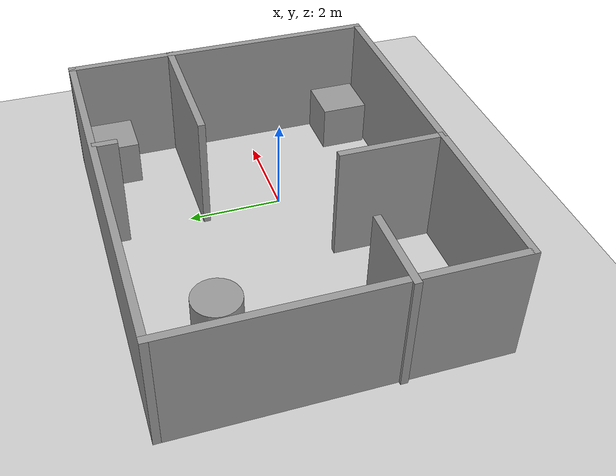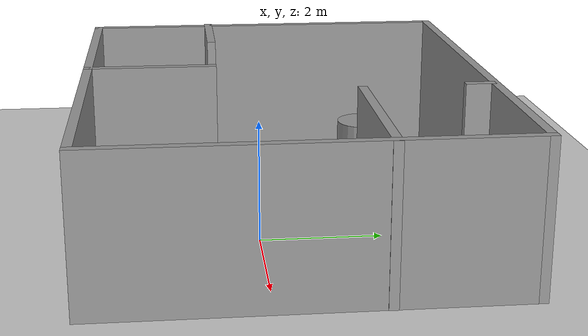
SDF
<sdf version="1.7">
 <world name="default">
  <light name="sun" type="directional">
   <pose>0 0 10 0 -0 0</pose>
   <diffuse>0.8 0.8 0.8 1</diffuse>
   <specular>0.2 0.2 0.2 1</specular>
   <attenuation>
    <range>1000</range>
    <constant>0.9</constant>
    <linear>0.01</linear>
    <quadratic>0.001</quadratic>
   </attenuation>
   <direction>-0.5 0.1 -0.9</direction>
   <spot><inner_angle>0</inner_angle><outer_angle>0</outer_angle><falloff>0</falloff></spot>
  </light>
  <model name="ground_plane">
   <static>1</static>
   <link name="link">
    <collision name="collision">
     <geometry><plane><normal>0 0 1</normal><size>100 100</size></plane></geometry>
     <surface>
      <contact><collide_bitmask>65535</collide_bitmask></contact>
      <friction><ode><mu>100</mu><mu2>50</mu2></ode></friction>
     </surface>
    </collision>
    <visual name="visual">
     <cast_shadows>0</cast_shadows>
     <geometry><plane><normal>0 0 1</normal><size>100 100</size></plane></geometry>
     <material>
      <script><uri>file://media/materials/scripts/gazebo.material</uri><name>Gazebo/Grey</name></script>
     </material>
    </visual>
   </link>
  </model>
  <gravity>0 0 -9.8</gravity>
  <magnetic_field>6e-06 2.3e-05 -4.2e-05</magnetic_field>
  <atmosphere type="adiabatic"/>
  <physics type="ode">
   <max_step_size>0.001</max_step_size>
   <real_time_factor>1</real_time_factor>
   <real_time_update_rate>1000</real_time_update_rate>
  </physics>
  <scene><ambient>0.4 0.4 0.4 1</ambient><background>0.7 0.7 0.7 1</background><shadows>1</shadows></scene>
  <audio><device>default</device></audio>
  <spherical_coordinates>
   <surface_model>EARTH_WGS84</surface_model>
   <latitude_deg>0</latitude_deg>
   <longitude_deg>0</longitude_deg>
   <elevation>0</elevation>
   <heading_deg>0</heading_deg>
  </spherical_coordinates>
  <model name="custom">
   <pose>-1.33588 0.54 0 0 -0 0</pose>
   <link name="Wall_1">
    <collision name="Wall_1_Collision">
     <geometry><box><size>4.75 0.15 2.5</size></box></geometry>
     <pose>0 0 1.25 0 -0 0</pose>
    </collision>
    <visual name="Wall_1_Visual">
     <pose>0 0 1.25 0 -0 0</pose>
     <geometry><box><size>4.75 0.15 2.5</size></box></geometry>
     <material>
      <script><uri>file://media/materials/scripts/gazebo.material</uri><name>Gazebo/Grey</name></script>
      <ambient>1 1 1 1</ambient>
     </material>
     <meta><layer>0</layer></meta>
    </visual>
    <pose>1.77588 -3.3 0 0 -0 0</pose>
   </link>
   <link name="Wall_10">
    <collision name="Wall_10_Collision">
     <geometry><box><size>0.5 0.15 2.5</size></box></geometry>
     <pose>0 0 1.25 0 -0 0</pose>
    </collision>
    <visual name="Wall_10_Visual">
     <pose>0 0 1.25 0 -0 0</pose>
     <geometry><box><size>0.5 0.15 2.5</size></box></geometry>
     <material>
      <script><uri>file://media/materials/scripts/gazebo.material</uri><name>Gazebo/Grey</name></script>
      <ambient>1 1 1 1</ambient>
     </material>
     <meta><layer>0</layer></meta>
    </visual>
    <pose>1.13276 3.05876 0 0 -0 -1.5708</pose>
   </link>
   <link name="Wall_13">
    <collision name="Wall_13_Collision">
     <geometry><box><size>3 0.15 2.5</size></box></geometry>
     <pose>0 0 1.25 0 -0 0</pose>
    </collision>
    <visual name="Wall_13_Visual">
     <pose>0 0 1.25 0 -0 0</pose>
     <geometry><box><size>3 0.15 2.5</size></box></geometry>
     <material>
      <script><uri>file://media/materials/scripts/gazebo.material</uri><name>Gazebo/Grey</name></script>
      <ambient>1 1 1 1</ambient>
     </material>
     <meta><layer>0</layer></meta>
    </visual>
    <pose>2.66101 1.13007 0 0 -0 3.14159</pose>
   </link>
   <link name="Wall_2">
    <collision name="Wall_2_Collision">
     <geometry><box><size>6.75 0.15 2.5</size></box></geometry>
     <pose>0 0 1.25 0 -0 0</pose>
    </collision>
    <visual name="Wall_2_Visual">
     <pose>0 0 1.25 0 -0 0</pose>
     <geometry><box><size>6.75 0.15 2.5</size></box></geometry>
     <material>
      <script><uri>file://media/materials/scripts/gazebo.material</uri><name>Gazebo/Grey</name></script>
      <ambient>1 1 1 1</ambient>
     </material>
     <meta><layer>0</layer></meta>
    </visual>
    <pose>4.07588 0 0 0 -0 1.5708</pose>
   </link>
   <link name="Wall_3">
    <collision name="Wall_3_Collision">
     <geometry><box><size>8.25 0.15 2.5</size></box></geometry>
     <pose>0 0 1.25 0 -0 0</pose>
    </collision>
    <visual name="Wall_3_Visual">
     <pose>0 0 1.25 0 -0 0</pose>
     <geometry><box><size>8.25 0.15 2.5</size></box></geometry>
     <material>
      <script><uri>file://media/materials/scripts/gazebo.material</uri><name>Gazebo/Grey</name></script>
      <ambient>1 1 1 1</ambient>
     </material>
     <meta><layer>0</layer></meta>
    </visual>
    <pose>0.025877 3.3 0 0 -0 3.14159</pose>
   </link>
   <link name="Wall_4">
    <collision name="Wall_4_Collision">
     <geometry><box><size>6.75 0.15 2.5</size></box></geometry>
     <pose>0 0 1.25 0 -0 0</pose>
    </collision>
    <visual name="Wall_4_Visual">
     <pose>0 0 1.25 0 -0 0</pose>
     <geometry><box><size>6.75 0.15 2.5</size></box></geometry>
     <material>
      <script><uri>file://media/materials/scripts/gazebo.material</uri><name>Gazebo/Grey</name></script>
      <ambient>1 1 1 1</ambient>
     </material>
     <meta><layer>0</layer></meta>
    </visual>
    <pose>-4.02412 0 0 0 -0 -1.5708</pose>
   </link>
   <link name="Wall_5">
    <collision name="Wall_5_Collision">
     <geometry><box><size>3.65 0.15 2.5</size></box></geometry>
     <pose>0 0 1.25 0 -0 0</pose>
    </collision>
    <visual name="Wall_5_Visual">
     <pose>0 0 1.25 0 -0 0</pose>
     <geometry><box><size>3.65 0.15 2.5</size></box></geometry>
     <material>
      <script><uri>file://media/materials/scripts/gazebo.material</uri><name>Gazebo/Grey</name></script>
      <ambient>1 1 1 1</ambient>
     </material>
     <meta><layer>0</layer></meta>
    </visual>
    <pose>-2.27412 -3.3 0 0 -0 0</pose>
   </link>
   <link name="Wall_6">
    <collision name="Wall_6_Collision">
     <geometry><box><size>2.25 0.15 2.5</size></box></geometry>
     <pose>0 0 1.25 0 -0 0</pose>
    </collision>
    <visual name="Wall_6_Visual">
     <pose>0 0 1.25 0 -0 0</pose>
     <geometry><box><size>2.25 0.15 2.5</size></box></geometry>
     <material>
      <script><uri>file://media/materials/scripts/gazebo.material</uri><name>Gazebo/Grey</name></script>
      <ambient>1 1 1 1</ambient>
     </material>
     <meta><layer>0</layer></meta>
    </visual>
    <pose>-0.524123 -2.25 0 0 -0 1.5708</pose>
   </link>
   <link name="Wall_8">
    <collision name="Wall_8_Collision">
     <geometry><box><size>1.75 0.15 2.5</size></box></geometry>
     <pose>0 0 1.25 0 -0 0</pose>
    </collision>
    <visual name="Wall_8_Visual">
     <pose>0 0 1.25 0 -0 0</pose>
     <geometry><box><size>1.75 0.15 2.5</size></box></geometry>
     <material>
      <script><uri>file://media/materials/scripts/gazebo.material</uri><name>Gazebo/Grey</name></script>
      <ambient>1 1 1 1</ambient>
     </material>
     <meta><layer>0</layer></meta>
    </visual>
    <pose>-3.28601 -1.13544 0 0 -0 0</pose>
   </link>
   <static>1</static>
  </model>
  <model name="unit_box">
   <pose>-4.78324 -2.15476 0.499995 -1e-05 -0 -0</pose>
   <link name="link">
    <inertial>
     <mass>1</mass>
     <inertia>
      <ixx>0.166667</ixx>
      <ixy>0</ixy>
      <ixz>0</ixz>
      <iyy>0.166667</iyy>
      <iyz>0</iyz>
      <izz>0.166667</izz>
     </inertia>
    </inertial>
    <collision name="collision"><geometry><box><size>1 1 1</size></box></geometry></collision>
    <visual name="visual">
     <geometry><box><size>1 1 1</size></box></geometry>
     <material>
      <script><name>Gazebo/Grey</name><uri>file://media/materials/scripts/gazebo.material</uri></script>
     </material>
    </visual>
   </link>
  </model>
  <model name="unit_box_0">
   <pose>2.16384 3.23134 0.499995 0 1e-05 0</pose>
   <link name="link">
    <inertial>
     <mass>1</mass>
     <inertia>
      <ixx>0.166667</ixx>
      <ixy>0</ixy>
      <ixz>0</ixz>
      <iyy>0.166667</iyy>
      <iyz>0</iyz>
      <izz>0.166667</izz>
     </inertia>
    </inertial>
    <collision name="collision"><geometry><box><size>1 1 1</size></box></geometry></collision>
    <visual name="visual">
     <geometry><box><size>1 1 1</size></box></geometry>
     <material>
      <script><name>Gazebo/Grey</name><uri>file://media/materials/scripts/gazebo.material</uri></script>
     </material>
    </visual>
   </link>
  </model>
  <model name="unit_box_1">
   <pose>2.14341 -2.13754 0.499995 -1e-05 -0 0</pose>
   <link name="link">
    <inertial>
     <mass>1</mass>
     <inertia>
      <ixx>0.166667</ixx>
      <ixy>0</ixy>
      <ixz>0</ixz>
      <iyy>0.166667</iyy>
      <iyz>0</iyz>
      <izz>0.166667</izz>
     </inertia>
    </inertial>
    <collision name="collision"><geometry><box><size>1 1 1</size></box></geometry></collision>
    <visual name="visual">
     <geometry><box><size>1 1 1</size></box></geometry>
     <material>
      <script><name>Gazebo/Grey</name><uri>file://media/materials/scripts/gazebo.material</uri></script>
     </material>
    </visual>
   </link>
  </model>
  <model name="unit_cylinder">
   <pose>-3.40121 2.26015 0.499997 3e-06 4e-06 -0</pose>
   <link name="link">
    <inertial>
     <mass>1</mass>
     <inertia><ixx>0.145833</ixx><ixy>0</ixy><ixz>0</ixz><iyy>0.145833</iyy><iyz>0</iyz><izz>0.125</izz></inertia>
    </inertial>
    <collision name="collision">
     <geometry><cylinder><radius>0.5</radius><length>1</length></cylinder></geometry>
    </collision>
    <visual name="visual">
     <geometry><cylinder><radius>0.5</radius><length>1</length></cylinder></geometry>
     <material>
      <script><name>Gazebo/Grey</name><uri>file://media/materials/scripts/gazebo.material</uri></script>
     </material>
    </visual>
   </link>
  </model>
 </world>
</sdf>
